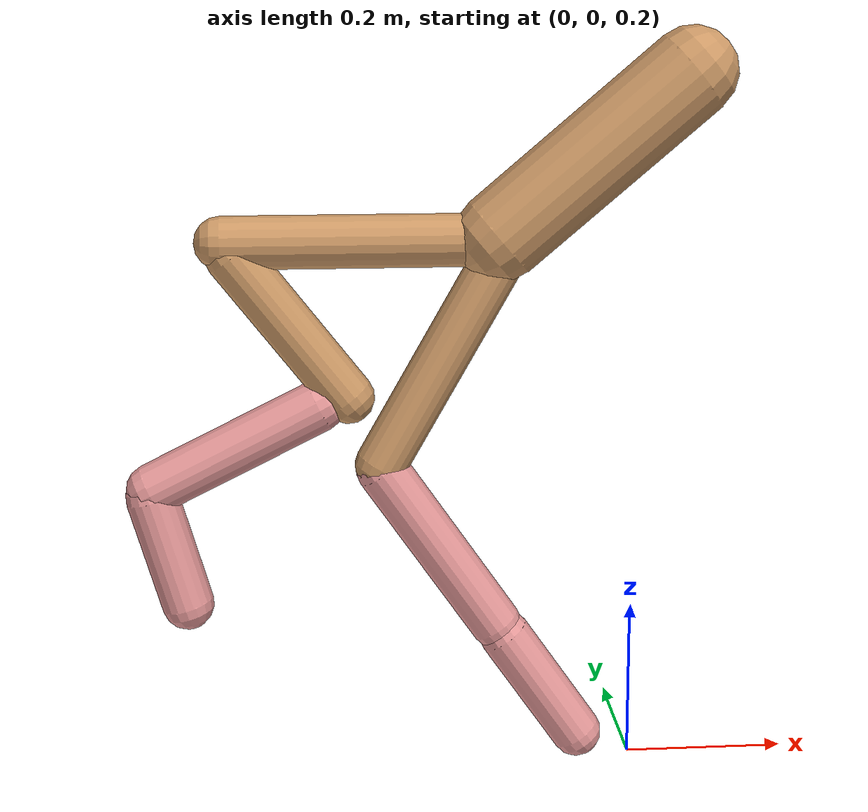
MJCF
<mujoco model="cheetah">
  <compiler angle="radian" coordinate="local" inertiafromgeom="true" settotalmass="14" />
  <default>
    <joint armature=".1" damping=".01" limited="true" solimplimit="0 .8 .03" solreflimit=".02 1" stiffness="8" />
    <geom conaffinity="0" condim="3" contype="1" friction="0.8 .1 .1" rgba="0.8 0.6 .4 1" solimp="0.0 0.8 0.01" solref="0.02 1" />
    <motor ctrllimited="true" ctrlrange="-1 1" />
  </default>
  <size nstack="300000" nuser_geom="1" />
  <option gravity="0 0 -9.81" timestep="0.01" />
  <worldbody>
    <body name="torso" pos="0.0 0.0 0.8705218525756722">
      <joint armature="0" axis="1 0 0" damping="0" limited="false" name="ignorex" pos="0 0 0" stiffness="0" type="slide" />
      <joint armature="0" axis="0 0 1" damping="0" limited="false" name="ignorez" pos="0 0 0" stiffness="0" type="slide" />
      <joint armature="0" axis="0 1 0" damping="0" limited="false" name="ignorey" pos="0 0 0" stiffness="0" type="hinge" />
      <geom fromto="-0.5 0.0 0.0 -0.15457816640111655 0.0 0.0" name="torso" size="0.03233948739483163" type="capsule" />
      <geom axisangle="0 1 0 .87" name="head" pos="-0.05457816640111657 0.0 0.1" size="0.05527102046369476 0.15" type="capsule" />

      <body name="bthigh" pos="-.5 0 0">
        <joint axis="0 1 0" damping="6" name="bthigh" pos="0 0 0" range="-.52 1.05" stiffness="240" type="hinge" />
        <geom axisangle="0 1 0 -3.8" name="bthigh" pos="0.07929676763169455 0.0 -0.10308579792120291" size="0.0322 0.11104417422540902" type="capsule" />
        <body name="bshin" pos="0.11859353526338909 0.0 -0.19617159584240582">
          <joint axis="0 1 0" damping="4.5" name="bshin" pos="0 0 0" range="-.785 .785" stiffness="180" type="hinge" />
          <geom axisangle="0 1 0 -2.03" name="bshin" pos="-0.10858170979415524 0.0 -0.05429085489707762" rgba="0.9 0.6 0.6 1" size="0.0322 0.1148732836814576" type="capsule" />
          <body name="bfoot" pos="-0.21716341958831048 0.0 -0.10858170979415524">
            <joint axis="0 1 0" damping="3" name="bfoot" pos="0 0 0" range="-.4 .785" stiffness="120" type="hinge" />
            <geom axisangle="0 1 0 -.27" name="bfoot" pos="0.02349590115364421 0.0 -0.07597008039678296" rgba="0.9 0.6 0.6 1" size="0.0322 0.07198725777371344" type="capsule" />
            <inertial mass="10" />
          </body>
        </body>
      </body>
      <body name="fthigh" pos="-0.15457816640111655 0.0 0.0">
        <joint axis="0 1 0" damping="4.5" name="fthigh" pos="0 0 0" range="-1.5 0.8" stiffness="180" type="hinge" />
        <geom axisangle="0 1 0 .52" name="fthigh" pos="-0.08195344744487339 0.0 -0.1404916241912115" size="0.0322 0.15672322844410505" type="capsule" />
        <body name="fshin" pos="-0.16390689488974677 0.0 -0.280983248382423">
          <joint axis="0 1 0" damping="3" name="fshin" pos="0 0 0" range="-1.2 1.1" stiffness="120" type="hinge" />
          <geom axisangle="0 1 0 -.6" name="fshin" pos="0.07607000731605881 0.0 -0.10532770243761988" rgba="0.9 0.6 0.6 1" size="0.0322 0.12490723469981303" type="capsule" />
          <body name="ffoot" pos="0.15214001463211763 0.0 -0.21065540487523976">
            <joint axis="0 1 0" damping="1.5" name="ffoot" pos="0 0 0" range="-3.1 -0.3" stiffness="60" type="hinge" />
            <geom axisangle="0 1 0 -.6" name="ffoot" pos="0.051751850458744274 0.0 -0.08050287849137999" rgba="0.9 0.6 0.6 1" size="0.0322 0.08248590970742371" type="capsule" />
            <inertial mass="10" />
          </body>
        </body>
      </body>
    </body>
  </worldbody>
  <actuator>
    <motor gear="120" joint="bthigh" name="bthigh" />
    <motor gear="90" joint="bshin" name="bshin" />
    <motor gear="60" joint="bfoot" name="bfoot" />
    <motor gear="120" joint="fthigh" name="fthigh" />
    <motor gear="60" joint="fshin" name="fshin" />
    <motor gear="30" joint="ffoot" name="ffoot" />
  </actuator>
</mujoco>
